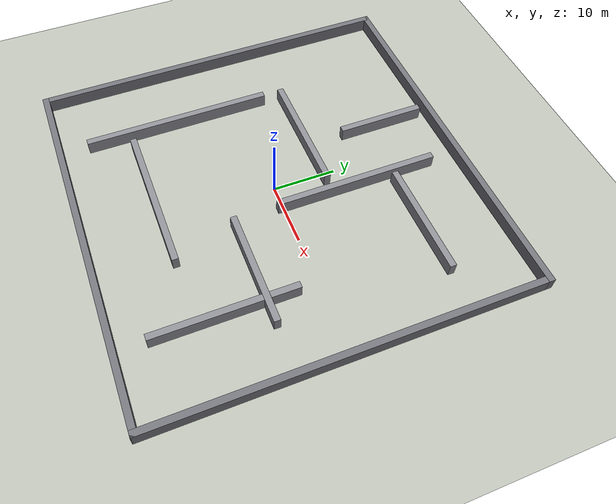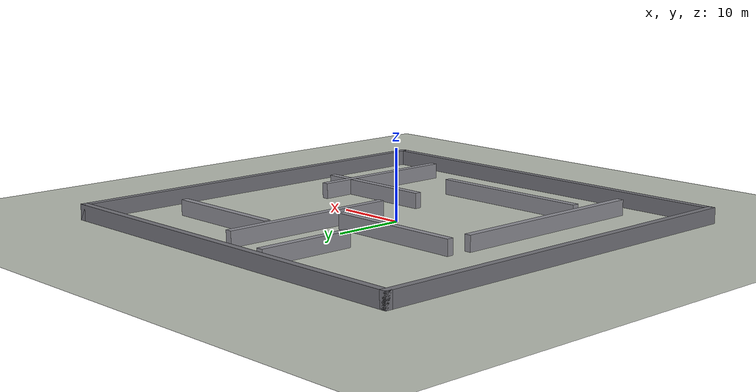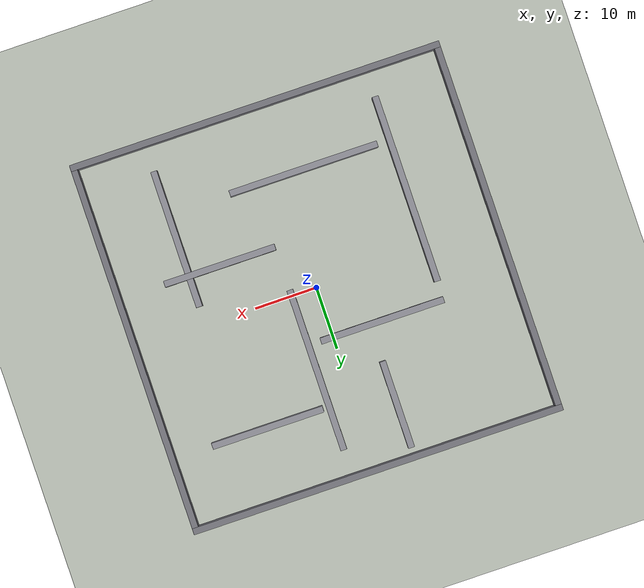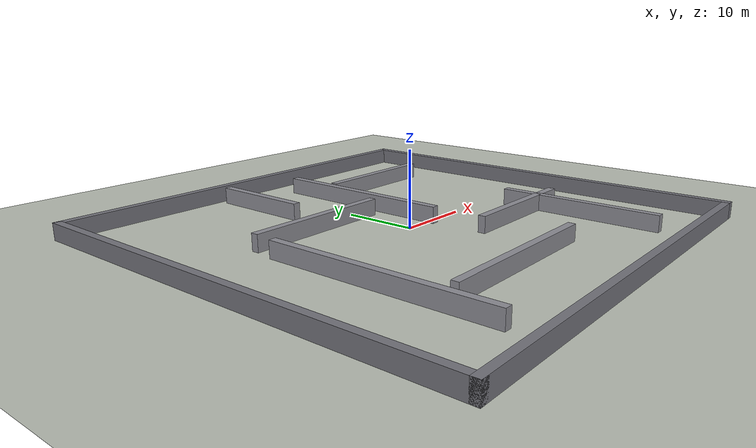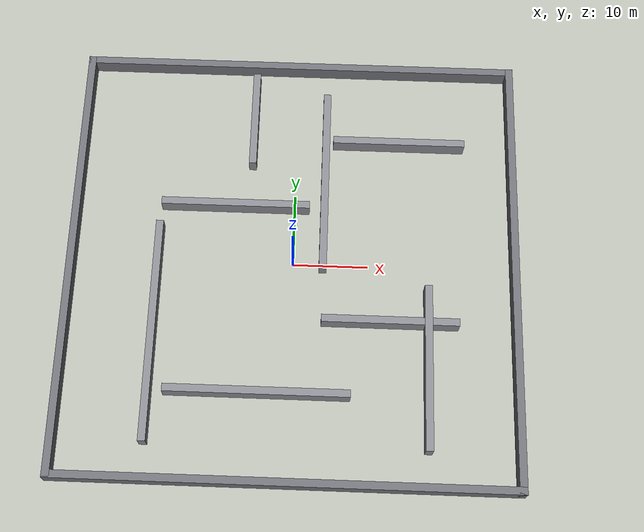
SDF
<?xml version="1.0" encoding="UTF-8"?>
<sdf version="1.9">
  <world name="walls">
    <physics type="ode">
      <max_step_size>0.004</max_step_size>
      <real_time_factor>1.0</real_time_factor>
      <real_time_update_rate>250</real_time_update_rate>
    </physics>

    <plugin filename="gz-sim-physics-system" name="gz::sim::systems::Physics"/>
    <plugin filename="gz-sim-user-commands-system" name="gz::sim::systems::UserCommands"/>
    <plugin filename="gz-sim-scene-broadcaster-system" name="gz::sim::systems::SceneBroadcaster"/>
    <plugin filename="gz-sim-sensors-system" name="gz::sim::systems::Sensors">
      <render_engine>ogre2</render_engine>
    </plugin>
    <plugin filename="gz-sim-imu-system" name="gz::sim::systems::Imu"/>
    <plugin filename="gz-sim-navsat-system" name="gz::sim::systems::NavSat"/>

    <gravity>0 0 -9.8</gravity>
    <magnetic_field>6e-06 2.3e-05 -4.2e-05</magnetic_field>
    <atmosphere type="adiabatic"/>

    <scene>
      <grid>true</grid>
      <ambient>0.55 0.55 0.55 1</ambient>
      <background>0.66 0.78 0.92 1</background>
      <shadows>true</shadows>
      <sky>
        <clouds>true</clouds>
      </sky>
    </scene>

    <light name="sunUTC" type="directional">
      <pose>0 0 500 0 0 0</pose>
      <cast_shadows>true</cast_shadows>
      <intensity>1</intensity>
      <direction>0.001 0.625 -0.78</direction>
      <diffuse>0.904 0.904 0.904 1</diffuse>
      <specular>0.271 0.271 0.271 1</specular>
      <attenuation>
        <range>2000</range>
        <linear>0</linear>
        <constant>1</constant>
        <quadratic>0</quadratic>
      </attenuation>
    </light>

    <spherical_coordinates>
      <surface_model>EARTH_WGS84</surface_model>
      <world_frame_orientation>ENU</world_frame_orientation>
      <latitude_deg>47.397971057728974</latitude_deg>
      <longitude_deg>8.546163739800146</longitude_deg>
      <elevation>0</elevation>
    </spherical_coordinates>

    <model name="ground_plane">
      <static>true</static>
      <pose>0 0 0 0 0 0</pose>
      <link name="ground_link">
        <collision name="ground_collision">
          <geometry>
            <plane>
              <normal>0 0 1</normal>
              <size>120 120</size>
            </plane>
          </geometry>
        </collision>
        <visual name="ground_visual">
          <geometry>
            <plane>
              <normal>0 0 1</normal>
              <size>120 120</size>
            </plane>
          </geometry>
          <material>
            <ambient>0.72 0.74 0.70 1</ambient>
            <diffuse>0.72 0.74 0.70 1</diffuse>
            <specular>0.05 0.05 0.05 1</specular>
          </material>
        </visual>
      </link>
    </model>

    <model name="north_wall">
      <static>true</static>
      <pose>0 29.5 1.1 0 0 0</pose>
      <link name="wall_link">
        <collision name="wall_collision"><geometry><box><size>60 1 2.2</size></box></geometry></collision>
        <visual name="wall_visual"><geometry><box><size>60 1 2.2</size></box></geometry><material><ambient>0.30 0.30 0.32 1</ambient><diffuse>0.45 0.45 0.48 1</diffuse></material></visual>
      </link>
    </model>

    <model name="south_wall">
      <static>true</static>
      <pose>0 -29.5 1.1 0 0 0</pose>
      <link name="wall_link">
        <collision name="wall_collision"><geometry><box><size>60 1 2.2</size></box></geometry></collision>
        <visual name="wall_visual"><geometry><box><size>60 1 2.2</size></box></geometry><material><ambient>0.30 0.30 0.32 1</ambient><diffuse>0.45 0.45 0.48 1</diffuse></material></visual>
      </link>
    </model>

    <model name="east_wall">
      <static>true</static>
      <pose>29.5 0 1.1 0 0 0</pose>
      <link name="wall_link">
        <collision name="wall_collision"><geometry><box><size>1 60 2.2</size></box></geometry></collision>
        <visual name="wall_visual"><geometry><box><size>1 60 2.2</size></box></geometry><material><ambient>0.30 0.30 0.32 1</ambient><diffuse>0.45 0.45 0.48 1</diffuse></material></visual>
      </link>
    </model>

    <model name="west_wall">
      <static>true</static>
      <pose>-29.5 0 1.1 0 0 0</pose>
      <link name="wall_link">
        <collision name="wall_collision"><geometry><box><size>1 60 2.2</size></box></geometry></collision>
        <visual name="wall_visual"><geometry><box><size>1 60 2.2</size></box></geometry><material><ambient>0.30 0.30 0.32 1</ambient><diffuse>0.45 0.45 0.48 1</diffuse></material></visual>
      </link>
    </model>

    <model name="maze_v1">
      <static>true</static>
      <pose>-18 -10 1.1 0 0 0</pose>
      <link name="wall_link">
        <collision name="wall_collision"><geometry><box><size>1 30 2.2</size></box></geometry></collision>
        <visual name="wall_visual"><geometry><box><size>1 30 2.2</size></box></geometry><material><ambient>0.34 0.34 0.36 1</ambient><diffuse>0.55 0.55 0.58 1</diffuse></material></visual>
      </link>
    </model>

    <model name="maze_h1">
      <static>true</static>
      <pose>-8 8 1.1 0 0 0</pose>
      <link name="wall_link">
        <collision name="wall_collision"><geometry><box><size>20 1 2.2</size></box></geometry></collision>
        <visual name="wall_visual"><geometry><box><size>20 1 2.2</size></box></geometry><material><ambient>0.34 0.34 0.36 1</ambient><diffuse>0.55 0.55 0.58 1</diffuse></material></visual>
      </link>
    </model>

    <model name="maze_v2">
      <static>true</static>
      <pose>4 12 1.1 0 0 0</pose>
      <link name="wall_link">
        <collision name="wall_collision"><geometry><box><size>1 26 2.2</size></box></geometry></collision>
        <visual name="wall_visual"><geometry><box><size>1 26 2.2</size></box></geometry><material><ambient>0.34 0.34 0.36 1</ambient><diffuse>0.55 0.55 0.58 1</diffuse></material></visual>
      </link>
    </model>

    <model name="maze_h2">
      <static>true</static>
      <pose>13 -8 1.1 0 0 0</pose>
      <link name="wall_link">
        <collision name="wall_collision"><geometry><box><size>18 1 2.2</size></box></geometry></collision>
        <visual name="wall_visual"><geometry><box><size>18 1 2.2</size></box></geometry><material><ambient>0.34 0.34 0.36 1</ambient><diffuse>0.55 0.55 0.58 1</diffuse></material></visual>
      </link>
    </model>

    <model name="maze_v3">
      <static>true</static>
      <pose>18 -14 1.1 0 0 0</pose>
      <link name="wall_link">
        <collision name="wall_collision"><geometry><box><size>1 22 2.2</size></box></geometry></collision>
        <visual name="wall_visual"><geometry><box><size>1 22 2.2</size></box></geometry><material><ambient>0.34 0.34 0.36 1</ambient><diffuse>0.55 0.55 0.58 1</diffuse></material></visual>
      </link>
    </model>

    <model name="maze_h3">
      <static>true</static>
      <pose>-4 -18 1.1 0 0 0</pose>
      <link name="wall_link">
        <collision name="wall_collision"><geometry><box><size>24 1 2.2</size></box></geometry></collision>
        <visual name="wall_visual"><geometry><box><size>24 1 2.2</size></box></geometry><material><ambient>0.34 0.34 0.36 1</ambient><diffuse>0.55 0.55 0.58 1</diffuse></material></visual>
      </link>
    </model>

    <model name="maze_v4">
      <static>true</static>
      <pose>-6 21 1.1 0 0 0</pose>
      <link name="wall_link">
        <collision name="wall_collision"><geometry><box><size>1 14 2.2</size></box></geometry></collision>
        <visual name="wall_visual"><geometry><box><size>1 14 2.2</size></box></geometry><material><ambient>0.34 0.34 0.36 1</ambient><diffuse>0.55 0.55 0.58 1</diffuse></material></visual>
      </link>
    </model>

    <model name="maze_h4">
      <static>true</static>
      <pose>14 18 1.1 0 0 0</pose>
      <link name="wall_link">
        <collision name="wall_collision"><geometry><box><size>18 1 2.2</size></box></geometry></collision>
        <visual name="wall_visual"><geometry><box><size>18 1 2.2</size></box></geometry><material><ambient>0.34 0.34 0.36 1</ambient><diffuse>0.55 0.55 0.58 1</diffuse></material></visual>
      </link>
    </model>
  </world>
</sdf>
